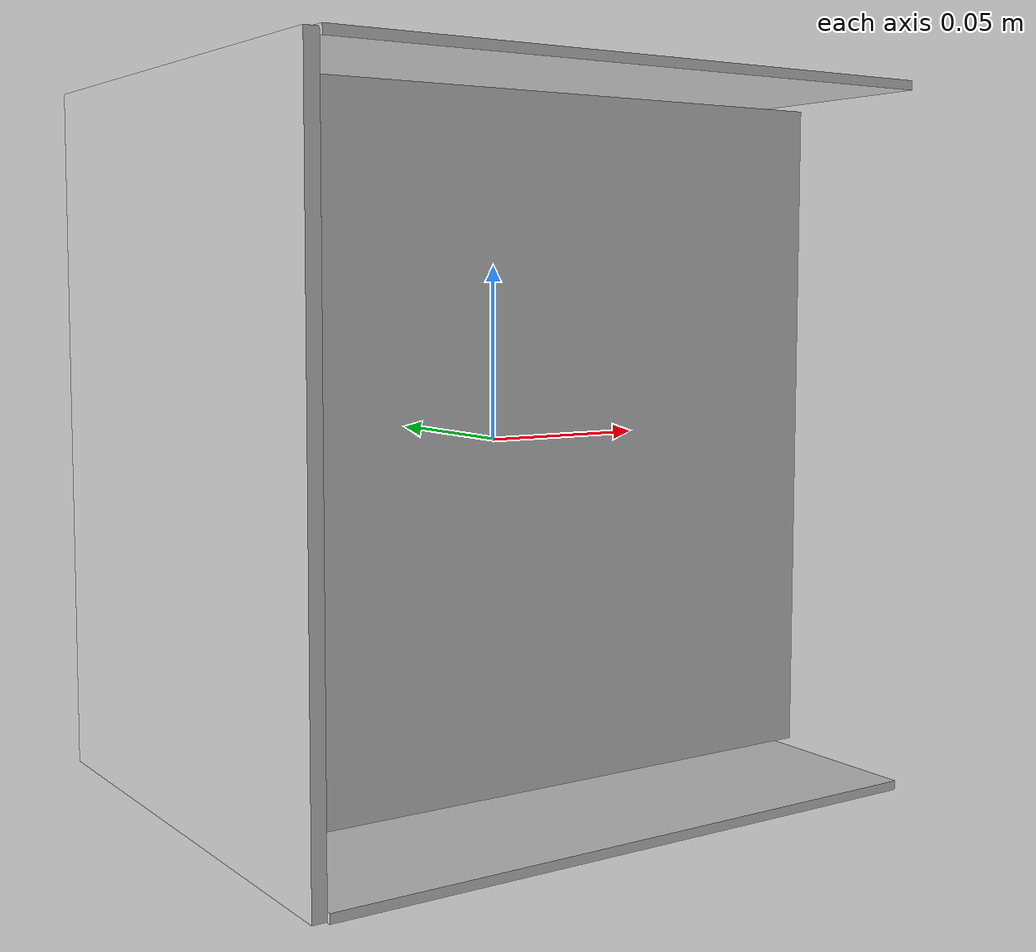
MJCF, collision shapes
<mujoco model="base_vis">
  <asset>
  <texture file="dark-wood.png" name="tex-base_vis" type="2d" />
  <material name="base_vis" reflectance="0.5" texrepeat="1 1" texture="tex-base_vis" texuniform="false" />
  <mesh file="visual/base_vis_vis.msh" name="base_vis_vis" scale="0.05 0.05 0.05" /></asset>
  <worldbody>
    <body>
      <body name="object">
      <geom solimp="0.998 0.998 0.001" solref="0.001 1" density="100" friction="0.95 0.3 0.1" type="mesh" mesh="base_vis_vis" conaffinity="0" contype="0" group="1" material="base_vis" /><geom solimp="0.998 0.998 0.001" solref="0.001 1" density="100" friction="0.95 0.3 0.1" type="box" pos="-0.00000 0.07026 -0.00000" quat="0.00000 0.70711 0.70711 0.00000" size="0.00184 0.09403 0.09676" group="0" rgba="0.8 0.8 0.8 0.3" /><geom solimp="0.998 0.998 0.001" solref="0.001 1" density="100" friction="0.95 0.3 0.1" type="box" pos="0.00000 0.02169 -0.00000" quat="0.00000 0.70711 0.70711 0.00000" size="0.00099 0.09403 0.09676" group="0" rgba="0.8 0.8 0.8 0.3" /><geom solimp="0.998 0.998 0.001" solref="0.001 1" density="100" friction="0.95 0.3 0.1" type="box" pos="0.00000 -0.02537 -0.00000" quat="0.70711 -0.00000 -0.00000 -0.70711" size="0.00105 0.09403 0.09676" group="0" rgba="0.8 0.8 0.8 0.3" /><geom solimp="0.998 0.998 0.001" solref="0.001 1" density="100" friction="0.95 0.3 0.1" type="box" pos="-0.00000 -0.00000 -0.09988" quat="0.70711 0.00000 0.70711 0.00000" size="0.00131 0.07166 0.09238" group="0" rgba="0.8 0.8 0.8 0.3" /><geom solimp="0.998 0.998 0.001" solref="0.001 1" density="100" friction="0.95 0.3 0.1" type="box" pos="0.00000 0.00000 0.09997" quat="0.70711 0.00000 -0.70711 0.00000" size="0.00131 0.07166 0.09238" group="0" rgba="0.8 0.8 0.8 0.3" /><geom solimp="0.998 0.998 0.001" solref="0.001 1" density="100" friction="0.95 0.3 0.1" type="box" pos="-0.09495 0.00559 -0.00000" quat="0.00000 0.00000 1.00000 0.00000" size="0.00202 0.07713 0.10053" group="0" rgba="0.8 0.8 0.8 0.3" /></body>
      <site rgba="0 0 0 0" size="0.005" pos="0 0 -0.0240" name="bottom_site" />
      <site rgba="0 0 0 0" size="0.005" pos="0 0 0.04" name="top_site" />
      <site rgba="0 0 0 0" size="0.005" pos="0.025 0.025 0" name="horizontal_radius_site" />
    </body>
  </worldbody>
</mujoco>
